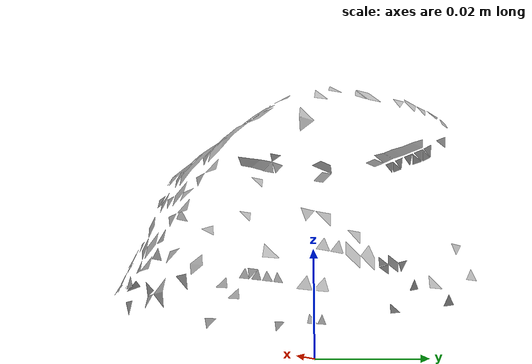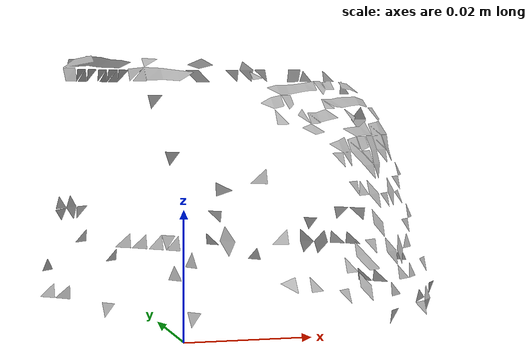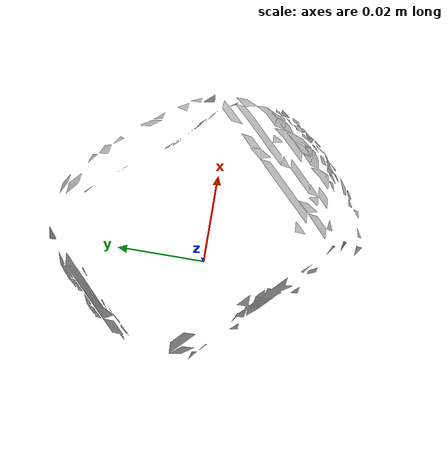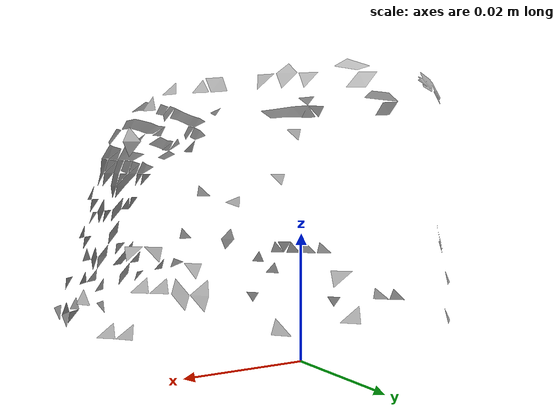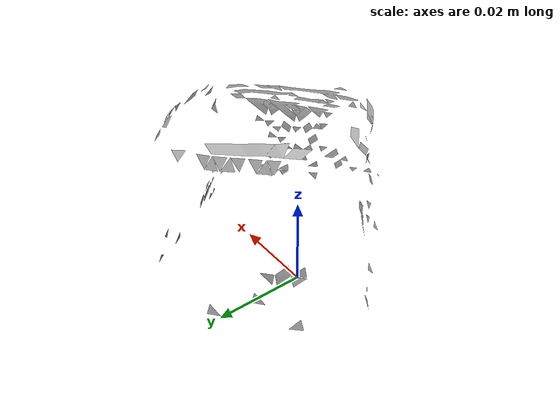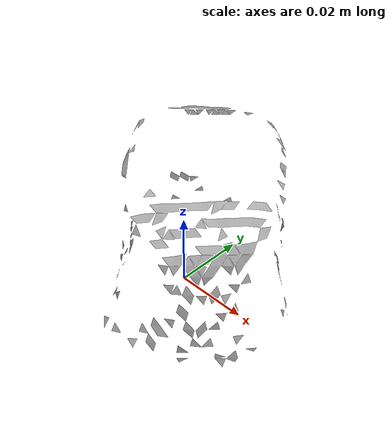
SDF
<?xml version='1.0'?>
<sdf version="1.4">
  <model name="b_lego_duplo">
    <static>false</static>
    <link name="link">
      <inertial>
        <pose>0.006395586954533603 0.0008243741356336474 0.02457872604700173 -0.45719778059045374 -1.3847877367442016 -0.3639348047595277</pose>
        <mass>6.029478759093555e-05</mass>
        <inertia>
          <ixx>1.8082955820737848e-08</ixx>
          <ixy>-2.574507468611565e-24</ixy>
          <ixz>2.124095105225515e-24</ixz>
          <iyy>1.4839270988593203e-08</iyy>
          <iyz>1.8998969447614006e-24</iyz>
          <izz>9.10471714905748e-09</izz>
        </inertia>
      </inertial>
      <collision name="collision">
        <geometry>
          <mesh>
            <!-- Use a downsampled mesh for collisions -->
            <uri>model://073-b_lego_duplo/tsdf/textured.obj</uri>
	        </mesh>
        </geometry>
        <surface>
      </surface>
      </collision>
      <visual name="visual">
        <geometry>
          <mesh>
            <uri>model://073-b_lego_duplo/tsdf/textured.obj</uri>
	        </mesh>
        </geometry>
        <material>
          <script>
            <uri>model://073-b_lego_duplo/b_lego_duplo.material</uri>
            <name>b_lego_duplo</name>
          </script>
        </material>
      </visual>
    </link>
  </model>
</sdf>
